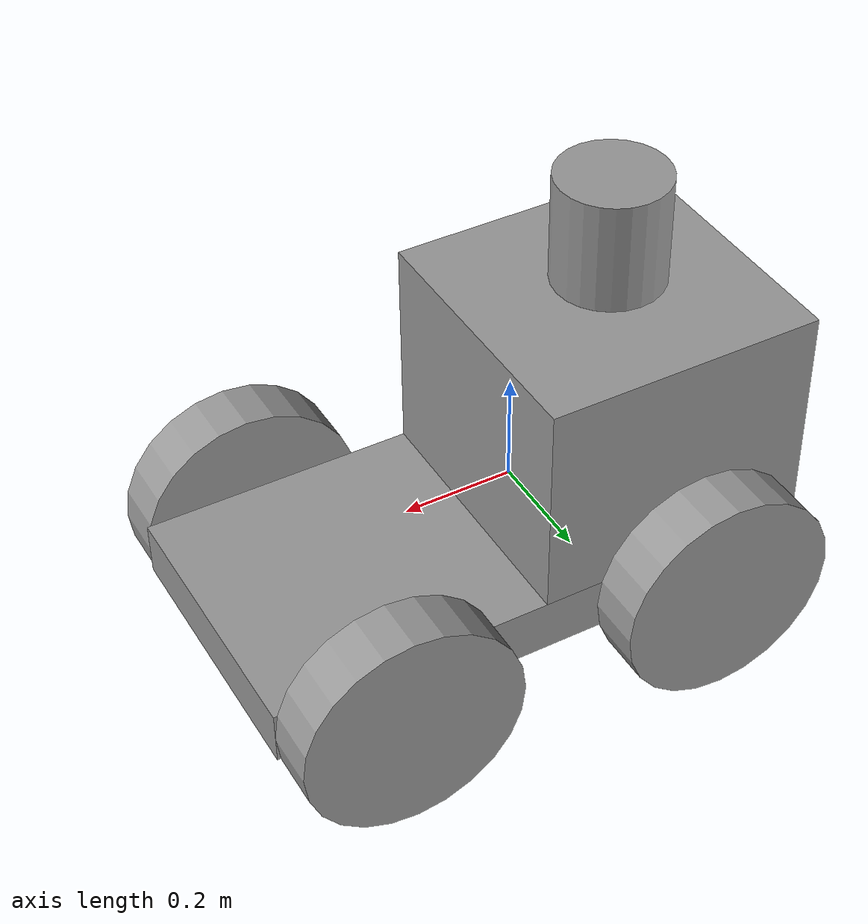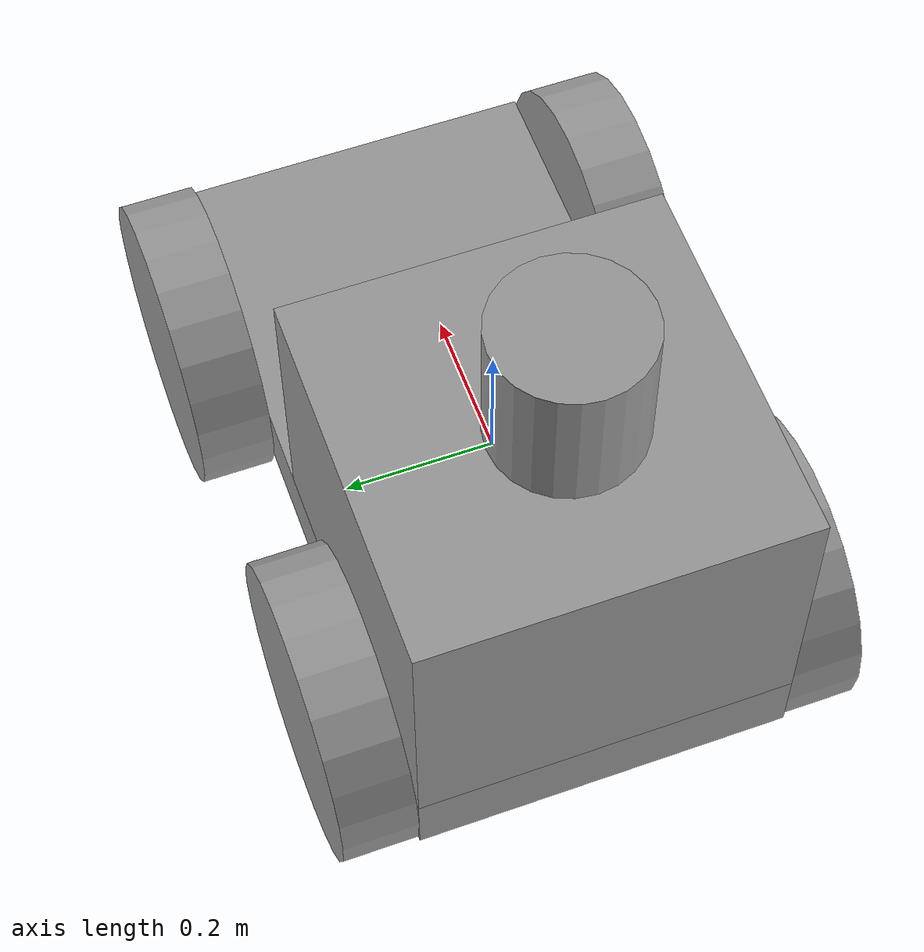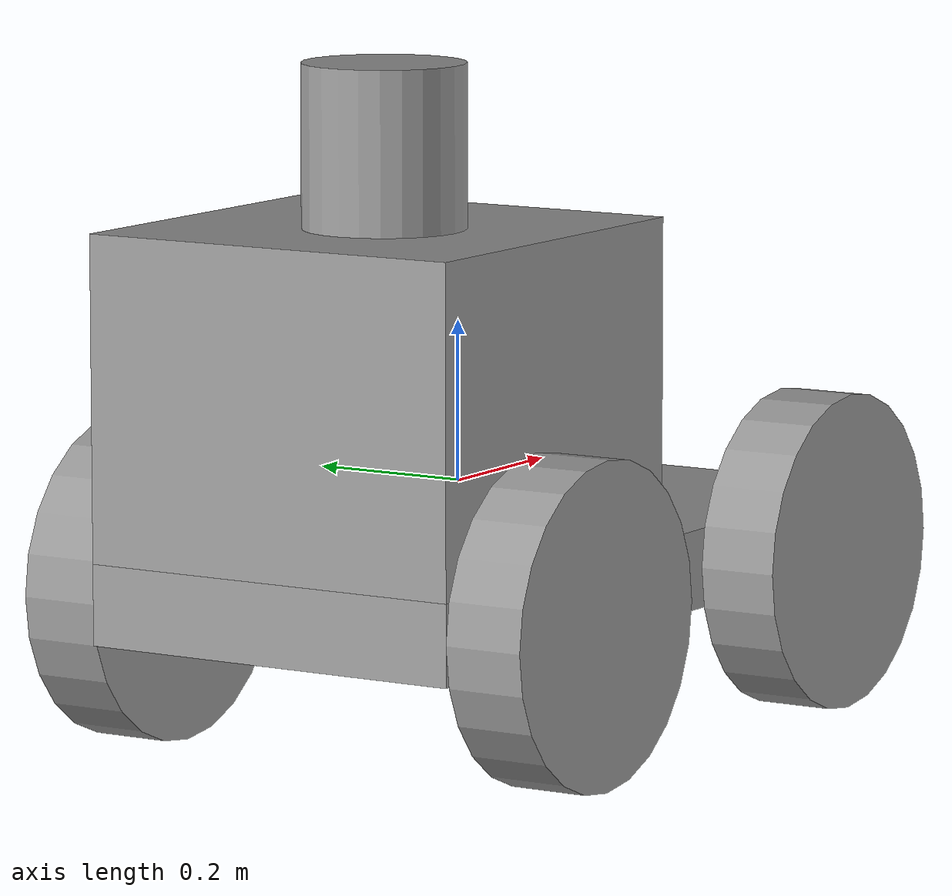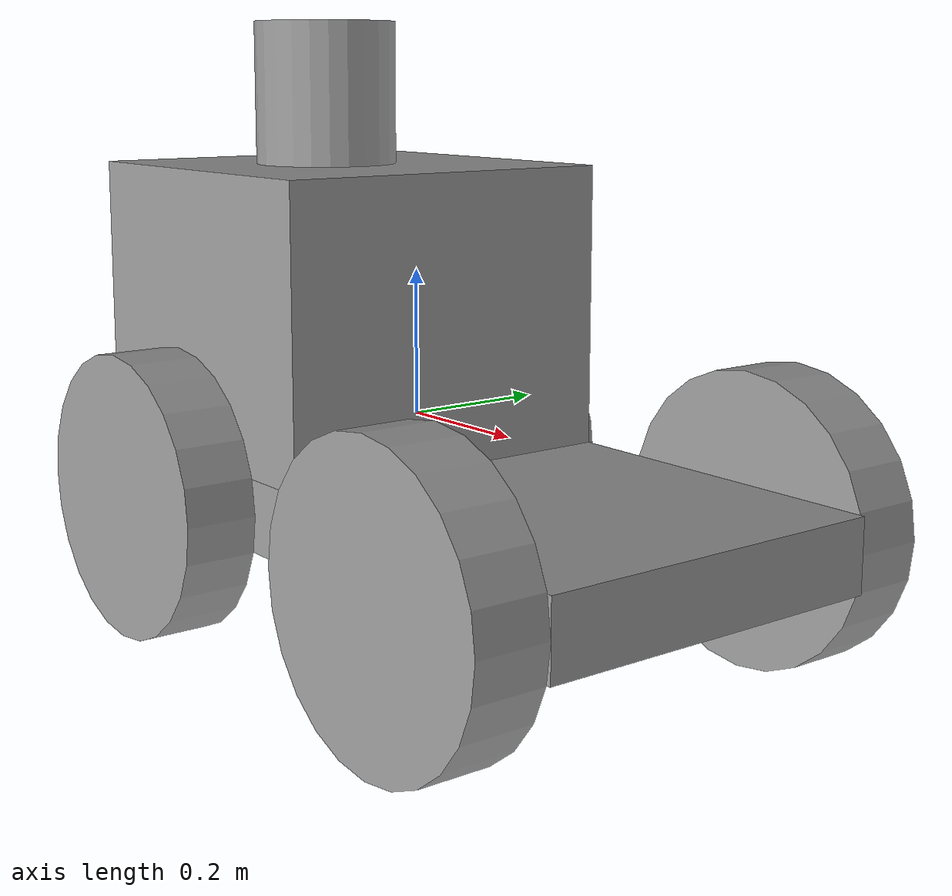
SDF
<?xml version='1.0'?>
<sdf version='1.6'>
  <model name='robot'>
    <link name='link_1'>
      <pose frame=''>0.074286 0.002857 -0.114286 0 -0 0</pose>
      <inertial>
        <mass>1</mass>
        <inertia>
          <ixx>0.166667</ixx>
          <ixy>0</ixy>
          <ixz>0</ixz>
          <iyy>0.166667</iyy>
          <iyz>0</iyz>
          <izz>0.166667</izz>
        </inertia>
        <pose frame=''>0 0 0 0 -0 0</pose>
      </inertial>
      <gravity>1</gravity>
      <self_collide>0</self_collide>
      <kinematic>0</kinematic>
      <visual name='visual'>
        <pose frame=''>0 0 0 0 -0 0</pose>
        <geometry>
          <box>
            <size>1 0.5 0.1</size>
          </box>
        </geometry>
        <material>
          <lighting>1</lighting>
          <script>
            <uri>file://media/materials/scripts/gazebo.material</uri>
            <name>Gazebo/Grey</name>
          </script>
          <shader type='pixel'>
            <normal_map>__default__</normal_map>
          </shader>
          <ambient>0 0 0 0.1</ambient>
          <diffuse>0.7 0.7 0.7 1</diffuse>
          <specular>0.01 0.01 1 1</specular>
          <emissive>0 0 0 1</emissive>
        </material>
        <transparency>0</transparency>
        <cast_shadows>1</cast_shadows>
      </visual>
      <collision name='collision'>
        <laser_retro>0</laser_retro>
        <max_contacts>10</max_contacts>
        <pose frame=''>0 0 0 0 -0 0</pose>
        <geometry>
          <box>
            <size>1 0.5 0.1</size>
          </box>
        </geometry>
        <surface>
          <friction>
            <ode>
              <mu>1</mu>
              <mu2>1</mu2>
              <fdir1>0 0 0</fdir1>
              <slip1>0</slip1>
              <slip2>0</slip2>
            </ode>
            <torsional>
              <coefficient>1</coefficient>
              <patch_radius>0</patch_radius>
              <surface_radius>0</surface_radius>
              <use_patch_radius>1</use_patch_radius>
              <ode>
                <slip>0</slip>
              </ode>
            </torsional>
          </friction>
          <bounce>
            <restitution_coefficient>0</restitution_coefficient>
            <threshold>1e+06</threshold>
          </bounce>
          <contact>
            <collide_without_contact>0</collide_without_contact>
            <collide_without_contact_bitmask>1</collide_without_contact_bitmask>
            <collide_bitmask>1</collide_bitmask>
            <ode>
              <soft_cfm>0</soft_cfm>
              <soft_erp>0.2</soft_erp>
              <kp>1e+13</kp>
              <kd>1</kd>
              <max_vel>0.01</max_vel>
              <min_depth>0</min_depth>
            </ode>
            <bullet>
              <split_impulse>1</split_impulse>
              <split_impulse_penetration_threshold>-0.01</split_impulse_penetration_threshold>
              <soft_cfm>0</soft_cfm>
              <soft_erp>0.2</soft_erp>
              <kp>1e+13</kp>
              <kd>1</kd>
            </bullet>
          </contact>
        </surface>
      </collision>
    </link>
    <link name='link_5'>
      <pose frame=''>-0.225714 -0.297162 -0.114286 1.5707 -0 0</pose>
      <inertial>
        <mass>1</mass>
        <inertia>
          <ixx>0.145833</ixx>
          <ixy>0</ixy>
          <ixz>0</ixz>
          <iyy>0.145833</iyy>
          <iyz>0</iyz>
          <izz>0.125</izz>
        </inertia>
        <pose frame=''>0 0 0 0 -0 0</pose>
      </inertial>
      <gravity>1</gravity>
      <self_collide>0</self_collide>
      <kinematic>0</kinematic>
      <visual name='visual'>
        <pose frame=''>0 0 0 0 -0 0</pose>
        <geometry>
          <cylinder>
            <radius>0.2</radius>
            <length>0.1</length>
          </cylinder>
        </geometry>
        <material>
          <lighting>1</lighting>
          <script>
            <uri>file://media/materials/scripts/gazebo.material</uri>
            <name>Gazebo/Grey</name>
          </script>
          <shader type='pixel'>
            <normal_map>__default__</normal_map>
          </shader>
          <ambient>0.3 0.3 0.3 1</ambient>
          <diffuse>0.7 0.7 0.7 1</diffuse>
          <specular>0.01 0.01 0.01 1</specular>
          <emissive>0 0 0 1</emissive>
        </material>
        <transparency>0</transparency>
        <cast_shadows>1</cast_shadows>
      </visual>
      <collision name='collision'>
        <laser_retro>0</laser_retro>
        <max_contacts>10</max_contacts>
        <pose frame=''>0 0 0 0 -0 0</pose>
        <geometry>
          <cylinder>
            <radius>0.2</radius>
            <length>0.1</length>
          </cylinder>
        </geometry>
        <surface>
          <friction>
            <ode>
              <mu>1</mu>
              <mu2>1</mu2>
              <fdir1>0 0 0</fdir1>
              <slip1>0</slip1>
              <slip2>0</slip2>
            </ode>
            <torsional>
              <coefficient>1</coefficient>
              <patch_radius>0</patch_radius>
              <surface_radius>0</surface_radius>
              <use_patch_radius>1</use_patch_radius>
              <ode>
                <slip>0</slip>
              </ode>
            </torsional>
          </friction>
          <bounce>
            <restitution_coefficient>0</restitution_coefficient>
            <threshold>1e+06</threshold>
          </bounce>
          <contact>
            <collide_without_contact>0</collide_without_contact>
            <collide_without_contact_bitmask>1</collide_without_contact_bitmask>
            <collide_bitmask>1</collide_bitmask>
            <ode>
              <soft_cfm>0</soft_cfm>
              <soft_erp>0.2</soft_erp>
              <kp>1e+13</kp>
              <kd>1</kd>
              <max_vel>0.01</max_vel>
              <min_depth>0</min_depth>
            </ode>
            <bullet>
              <split_impulse>1</split_impulse>
              <split_impulse_penetration_threshold>-0.01</split_impulse_penetration_threshold>
              <soft_cfm>0</soft_cfm>
              <soft_erp>0.2</soft_erp>
              <kp>1e+13</kp>
              <kd>1</kd>
            </bullet>
          </contact>
        </surface>
      </collision>
    </link>
    <link name='link_5_clone'>
      <pose frame=''>0.374286 -0.297162 -0.114286 1.5707 -0 0</pose>
      <inertial>
        <mass>1</mass>
        <inertia>
          <ixx>0.145833</ixx>
          <ixy>0</ixy>
          <ixz>0</ixz>
          <iyy>0.145833</iyy>
          <iyz>0</iyz>
          <izz>0.125</izz>
        </inertia>
        <pose frame=''>0 0 0 0 -0 0</pose>
      </inertial>
      <self_collide>0</self_collide>
      <kinematic>0</kinematic>
      <visual name='visual'>
        <pose frame=''>0 0 0 0 -0 0</pose>
        <geometry>
          <cylinder>
            <radius>0.2</radius>
            <length>0.1</length>
          </cylinder>
        </geometry>
        <material>
          <lighting>1</lighting>
          <script>
            <uri>file://media/materials/scripts/gazebo.material</uri>
            <name>Gazebo/Grey</name>
          </script>
          <shader type='pixel'>
            <normal_map>__default__</normal_map>
          </shader>
          <ambient>0.3 0.3 0.3 1</ambient>
          <diffuse>0.7 0.7 0.7 1</diffuse>
          <specular>0.01 0.01 0.01 1</specular>
          <emissive>0 0 0 1</emissive>
        </material>
        <transparency>0</transparency>
        <cast_shadows>1</cast_shadows>
      </visual>
      <collision name='collision'>
        <laser_retro>0</laser_retro>
        <max_contacts>10</max_contacts>
        <pose frame=''>0 0 0 0 -0 0</pose>
        <geometry>
          <cylinder>
            <radius>0.2</radius>
            <length>0.1</length>
          </cylinder>
        </geometry>
        <surface>
          <friction>
            <ode>
              <mu>1</mu>
              <mu2>1</mu2>
              <fdir1>0 0 0</fdir1>
              <slip1>0</slip1>
              <slip2>0</slip2>
            </ode>
            <torsional>
              <coefficient>1</coefficient>
              <patch_radius>0</patch_radius>
              <surface_radius>0</surface_radius>
              <use_patch_radius>1</use_patch_radius>
              <ode>
                <slip>0</slip>
              </ode>
            </torsional>
          </friction>
          <bounce>
            <restitution_coefficient>0</restitution_coefficient>
            <threshold>1e+06</threshold>
          </bounce>
          <contact>
            <collide_without_contact>0</collide_without_contact>
            <collide_without_contact_bitmask>1</collide_without_contact_bitmask>
            <collide_bitmask>1</collide_bitmask>
            <ode>
              <soft_cfm>0</soft_cfm>
              <soft_erp>0.2</soft_erp>
              <kp>1e+13</kp>
              <kd>1</kd>
              <max_vel>0.01</max_vel>
              <min_depth>0</min_depth>
            </ode>
            <bullet>
              <split_impulse>1</split_impulse>
              <split_impulse_penetration_threshold>-0.01</split_impulse_penetration_threshold>
              <soft_cfm>0</soft_cfm>
              <soft_erp>0.2</soft_erp>
              <kp>1e+13</kp>
              <kd>1</kd>
            </bullet>
          </contact>
        </surface>
      </collision>
    </link>
    <link name='link_5_clone_0'>
      <pose frame=''>-0.225714 0.302876 -0.114286 1.5707 -0 0</pose>
      <inertial>
        <mass>1</mass>
        <inertia>
          <ixx>0.145833</ixx>
          <ixy>0</ixy>
          <ixz>0</ixz>
          <iyy>0.145833</iyy>
          <iyz>0</iyz>
          <izz>0.125</izz>
        </inertia>
        <pose frame=''>0 0 0 0 -0 0</pose>
      </inertial>
      <self_collide>0</self_collide>
      <kinematic>0</kinematic>
      <visual name='visual'>
        <pose frame=''>0 0 0 0 -0 0</pose>
        <geometry>
          <cylinder>
            <radius>0.2</radius>
            <length>0.1</length>
          </cylinder>
        </geometry>
        <material>
          <lighting>1</lighting>
          <script>
            <uri>file://media/materials/scripts/gazebo.material</uri>
            <name>Gazebo/Grey</name>
          </script>
          <shader type='pixel'>
            <normal_map>__default__</normal_map>
          </shader>
          <ambient>0.3 0.3 0.3 1</ambient>
          <diffuse>0.7 0.7 0.7 1</diffuse>
          <specular>0.01 0.01 0.01 1</specular>
          <emissive>0 0 0 1</emissive>
        </material>
        <transparency>0</transparency>
        <cast_shadows>1</cast_shadows>
      </visual>
      <collision name='collision'>
        <laser_retro>0</laser_retro>
        <max_contacts>10</max_contacts>
        <pose frame=''>0 0 0 0 -0 0</pose>
        <geometry>
          <cylinder>
            <radius>0.2</radius>
            <length>0.1</length>
          </cylinder>
        </geometry>
        <surface>
          <friction>
            <ode>
              <mu>1</mu>
              <mu2>1</mu2>
              <fdir1>0 0 0</fdir1>
              <slip1>0</slip1>
              <slip2>0</slip2>
            </ode>
            <torsional>
              <coefficient>1</coefficient>
              <patch_radius>0</patch_radius>
              <surface_radius>0</surface_radius>
              <use_patch_radius>1</use_patch_radius>
              <ode>
                <slip>0</slip>
              </ode>
            </torsional>
          </friction>
          <bounce>
            <restitution_coefficient>0</restitution_coefficient>
            <threshold>1e+06</threshold>
          </bounce>
          <contact>
            <collide_without_contact>0</collide_without_contact>
            <collide_without_contact_bitmask>1</collide_without_contact_bitmask>
            <collide_bitmask>1</collide_bitmask>
            <ode>
              <soft_cfm>0</soft_cfm>
              <soft_erp>0.2</soft_erp>
              <kp>1e+13</kp>
              <kd>1</kd>
              <max_vel>0.01</max_vel>
              <min_depth>0</min_depth>
            </ode>
            <bullet>
              <split_impulse>1</split_impulse>
              <split_impulse_penetration_threshold>-0.01</split_impulse_penetration_threshold>
              <soft_cfm>0</soft_cfm>
              <soft_erp>0.2</soft_erp>
              <kp>1e+13</kp>
              <kd>1</kd>
            </bullet>
          </contact>
        </surface>
      </collision>
    </link>
    <link name='link_5_clone_1'>
      <pose frame=''>0.374286 0.302876 -0.114286 1.5707 -0 0</pose>
      <inertial>
        <mass>1</mass>
        <inertia>
          <ixx>0.145833</ixx>
          <ixy>0</ixy>
          <ixz>0</ixz>
          <iyy>0.145833</iyy>
          <iyz>0</iyz>
          <izz>0.125</izz>
        </inertia>
        <pose frame=''>0 0 0 0 -0 0</pose>
      </inertial>
      <self_collide>0</self_collide>
      <kinematic>0</kinematic>
      <visual name='visual'>
        <pose frame=''>0 0 0 0 -0 0</pose>
        <geometry>
          <cylinder>
            <radius>0.2</radius>
            <length>0.1</length>
          </cylinder>
        </geometry>
        <material>
          <lighting>1</lighting>
          <script>
            <uri>file://media/materials/scripts/gazebo.material</uri>
            <name>Gazebo/Grey</name>
          </script>
          <shader type='pixel'>
            <normal_map>__default__</normal_map>
          </shader>
          <ambient>0.3 0.3 0.3 1</ambient>
          <diffuse>0.7 0.7 0.7 1</diffuse>
          <specular>0.01 0.01 0.01 1</specular>
          <emissive>0 0 0 1</emissive>
        </material>
        <transparency>0</transparency>
        <cast_shadows>1</cast_shadows>
      </visual>
      <collision name='collision'>
        <laser_retro>0</laser_retro>
        <max_contacts>10</max_contacts>
        <pose frame=''>0 0 0 0 -0 0</pose>
        <geometry>
          <cylinder>
            <radius>0.2</radius>
            <length>0.1</length>
          </cylinder>
        </geometry>
        <surface>
          <friction>
            <ode>
              <mu>1</mu>
              <mu2>1</mu2>
              <fdir1>0 0 0</fdir1>
              <slip1>0</slip1>
              <slip2>0</slip2>
            </ode>
            <torsional>
              <coefficient>1</coefficient>
              <patch_radius>0</patch_radius>
              <surface_radius>0</surface_radius>
              <use_patch_radius>1</use_patch_radius>
              <ode>
                <slip>0</slip>
              </ode>
            </torsional>
          </friction>
          <bounce>
            <restitution_coefficient>0</restitution_coefficient>
            <threshold>1e+06</threshold>
          </bounce>
          <contact>
            <collide_without_contact>0</collide_without_contact>
            <collide_without_contact_bitmask>1</collide_without_contact_bitmask>
            <collide_bitmask>1</collide_bitmask>
            <ode>
              <soft_cfm>0</soft_cfm>
              <soft_erp>0.2</soft_erp>
              <kp>1e+13</kp>
              <kd>1</kd>
              <max_vel>0.01</max_vel>
              <min_depth>0</min_depth>
            </ode>
            <bullet>
              <split_impulse>1</split_impulse>
              <split_impulse_penetration_threshold>-0.01</split_impulse_penetration_threshold>
              <soft_cfm>0</soft_cfm>
              <soft_erp>0.2</soft_erp>
              <kp>1e+13</kp>
              <kd>1</kd>
            </bullet>
          </contact>
        </surface>
      </collision>
    </link>
    <link name='link_8'>
      <pose frame=''>-0.175714 0.002857 0.135714 0 -0 0</pose>
      <inertial>
        <mass>1</mass>
        <inertia>
          <ixx>0.166667</ixx>
          <ixy>0</ixy>
          <ixz>0</ixz>
          <iyy>0.166667</iyy>
          <iyz>0</iyz>
          <izz>0.166667</izz>
        </inertia>
        <pose frame=''>0 0 0 0 -0 0</pose>
      </inertial>
      <gravity>1</gravity>
      <self_collide>0</self_collide>
      <kinematic>0</kinematic>
      <visual name='visual'>
        <pose frame=''>0 0 0 0 -0 0</pose>
        <geometry>
          <box>
            <size>0.5 0.5 0.4</size>
          </box>
        </geometry>
        <material>
          <lighting>1</lighting>
          <script>
            <uri>file://media/materials/scripts/gazebo.material</uri>
            <name>Gazebo/Grey</name>
          </script>
          <shader type='pixel'>
            <normal_map>__default__</normal_map>
          </shader>
          <ambient>0 0 0 0.5</ambient>
          <diffuse>0.7 0.7 0.7 1</diffuse>
          <specular>0.01 0.01 0.01 1</specular>
          <emissive>0 0 0 1</emissive>
        </material>
        <transparency>0</transparency>
        <cast_shadows>1</cast_shadows>
      </visual>
      <collision name='collision'>
        <laser_retro>0</laser_retro>
        <max_contacts>10</max_contacts>
        <pose frame=''>0 0 0 0 -0 0</pose>
        <geometry>
          <box>
            <size>0.5 0.5 0.4</size>
          </box>
        </geometry>
        <surface>
          <friction>
            <ode>
              <mu>1</mu>
              <mu2>1</mu2>
              <fdir1>0 0 0</fdir1>
              <slip1>0</slip1>
              <slip2>0</slip2>
            </ode>
            <torsional>
              <coefficient>1</coefficient>
              <patch_radius>0</patch_radius>
              <surface_radius>0</surface_radius>
              <use_patch_radius>1</use_patch_radius>
              <ode>
                <slip>0</slip>
              </ode>
            </torsional>
          </friction>
          <bounce>
            <restitution_coefficient>0</restitution_coefficient>
            <threshold>1e+06</threshold>
          </bounce>
          <contact>
            <collide_without_contact>0</collide_without_contact>
            <collide_without_contact_bitmask>1</collide_without_contact_bitmask>
            <collide_bitmask>1</collide_bitmask>
            <ode>
              <soft_cfm>0</soft_cfm>
              <soft_erp>0.2</soft_erp>
              <kp>1e+13</kp>
              <kd>1</kd>
              <max_vel>0.01</max_vel>
              <min_depth>0</min_depth>
            </ode>
            <bullet>
              <split_impulse>1</split_impulse>
              <split_impulse_penetration_threshold>-0.01</split_impulse_penetration_threshold>
              <soft_cfm>0</soft_cfm>
              <soft_erp>0.2</soft_erp>
              <kp>1e+13</kp>
              <kd>1</kd>
            </bullet>
          </contact>
        </surface>
      </collision>
    </link>
    <link name='link_9'>
      <pose frame=''>-0.195714 -0.017143 0.435714 0 -0 0</pose>
      <inertial>
        <mass>1</mass>
        <inertia>
          <ixx>0.145833</ixx>
          <ixy>0</ixy>
          <ixz>0</ixz>
          <iyy>0.145833</iyy>
          <iyz>0</iyz>
          <izz>0.125</izz>
        </inertia>
        <pose frame=''>0 0 0 0 -0 0</pose>
      </inertial>
      <gravity>1</gravity>
      <self_collide>0</self_collide>
      <kinematic>0</kinematic>
      <visual name='visual'>
        <pose frame=''>0 0 0 0 -0 0</pose>
        <geometry>
          <cylinder>
            <radius>0.1</radius>
            <length>0.2</length>
          </cylinder>
        </geometry>
        <material>
          <lighting>1</lighting>
          <script>
            <uri>file://media/materials/scripts/gazebo.material</uri>
            <name>Gazebo/Grey</name>
          </script>
          <shader type='pixel'>
            <normal_map>__default__</normal_map>
          </shader>
          <ambient>1 1 1 1</ambient>
          <diffuse>1 1 1 1</diffuse>
          <specular>0.01 0.01 0.01 1</specular>
          <emissive>0 0 0 1</emissive>
        </material>
        <transparency>0</transparency>
        <cast_shadows>1</cast_shadows>
      </visual>
      <collision name='collision'>
        <laser_retro>0</laser_retro>
        <max_contacts>10</max_contacts>
        <pose frame=''>0 0 0 0 -0 0</pose>
        <geometry>
          <cylinder>
            <radius>0.1</radius>
            <length>0.2</length>
          </cylinder>
        </geometry>
        <surface>
          <friction>
            <ode>
              <mu>1</mu>
              <mu2>1</mu2>
              <fdir1>0 0 0</fdir1>
              <slip1>0</slip1>
              <slip2>0</slip2>
            </ode>
            <torsional>
              <coefficient>1</coefficient>
              <patch_radius>0</patch_radius>
              <surface_radius>0</surface_radius>
              <use_patch_radius>1</use_patch_radius>
              <ode>
                <slip>0</slip>
              </ode>
            </torsional>
          </friction>
          <bounce>
            <restitution_coefficient>0</restitution_coefficient>
            <threshold>1e+06</threshold>
          </bounce>
          <contact>
            <collide_without_contact>0</collide_without_contact>
            <collide_without_contact_bitmask>1</collide_without_contact_bitmask>
            <collide_bitmask>1</collide_bitmask>
            <ode>
              <soft_cfm>0</soft_cfm>
              <soft_erp>0.2</soft_erp>
              <kp>1e+13</kp>
              <kd>1</kd>
              <max_vel>0.01</max_vel>
              <min_depth>0</min_depth>
            </ode>
            <bullet>
              <split_impulse>1</split_impulse>
              <split_impulse_penetration_threshold>-0.01</split_impulse_penetration_threshold>
              <soft_cfm>0</soft_cfm>
              <soft_erp>0.2</soft_erp>
              <kp>1e+13</kp>
              <kd>1</kd>
            </bullet>
          </contact>
        </surface>
      </collision>
    </link>
    <joint name='link_1_JOINT_3' type='revolute'>
      <parent>link_1</parent>
      <child>link_5</child>
      <pose frame=''>0 0 0 0 -0 0</pose>
      <axis>
        <xyz>0 0 1</xyz>
        <use_parent_model_frame>0</use_parent_model_frame>
        <limit>
          <lower>-1.79769e+308</lower>
          <upper>1.79769e+308</upper>
          <effort>-1</effort>
          <velocity>-1</velocity>
        </limit>
        <dynamics>
          <spring_reference>0</spring_reference>
          <spring_stiffness>0</spring_stiffness>
          <damping>0</damping>
        </dynamics>
      </axis>
      <physics>
        <ode>
          <limit>
            <cfm>0</cfm>
            <erp>0.2</erp>
          </limit>
          <suspension>
            <cfm>0</cfm>
            <erp>0.2</erp>
          </suspension>
        </ode>
      </physics>
    </joint>
    <joint name='link_1_JOINT_4' type='revolute'>
      <parent>link_1</parent>
      <child>link_5_clone</child>
      <pose frame=''>0 0 0 0 -0 0</pose>
      <axis>
        <xyz>0 0 1</xyz>
        <use_parent_model_frame>0</use_parent_model_frame>
        <limit>
          <lower>-1.79769e+308</lower>
          <upper>1.79769e+308</upper>
          <effort>-1</effort>
          <velocity>-1</velocity>
        </limit>
        <dynamics>
          <spring_reference>0</spring_reference>
          <spring_stiffness>0</spring_stiffness>
          <damping>0</damping>
        </dynamics>
      </axis>
      <physics>
        <ode>
          <limit>
            <cfm>0</cfm>
            <erp>0.2</erp>
          </limit>
          <suspension>
            <cfm>0</cfm>
            <erp>0.2</erp>
          </suspension>
        </ode>
      </physics>
    </joint>
    <joint name='link_1_JOINT_5' type='revolute'>
      <parent>link_1</parent>
      <child>link_5_clone_0</child>
      <pose frame=''>0 0 0 0 -0 0</pose>
      <axis>
        <xyz>0 0 1</xyz>
        <use_parent_model_frame>0</use_parent_model_frame>
        <limit>
          <lower>-1.79769e+308</lower>
          <upper>1.79769e+308</upper>
          <effort>-1</effort>
          <velocity>-1</velocity>
        </limit>
        <dynamics>
          <spring_reference>0</spring_reference>
          <spring_stiffness>0</spring_stiffness>
          <damping>0</damping>
        </dynamics>
      </axis>
      <physics>
        <ode>
          <limit>
            <cfm>0</cfm>
            <erp>0.2</erp>
          </limit>
          <suspension>
            <cfm>0</cfm>
            <erp>0.2</erp>
          </suspension>
        </ode>
      </physics>
    </joint>
    <joint name='link_1_JOINT_7' type='revolute'>
      <parent>link_1</parent>
      <child>link_5_clone_1</child>
      <pose frame=''>0 0 0 0 -0 0</pose>
      <axis>
        <xyz>0 0 1</xyz>
        <use_parent_model_frame>0</use_parent_model_frame>
        <limit>
          <lower>-1.79769e+308</lower>
          <upper>1.79769e+308</upper>
          <effort>-1</effort>
          <velocity>-1</velocity>
        </limit>
        <dynamics>
          <spring_reference>0</spring_reference>
          <spring_stiffness>0</spring_stiffness>
          <damping>0</damping>
        </dynamics>
      </axis>
      <physics>
        <ode>
          <limit>
            <cfm>0</cfm>
            <erp>0.2</erp>
          </limit>
          <suspension>
            <cfm>0</cfm>
            <erp>0.2</erp>
          </suspension>
        </ode>
      </physics>
    </joint>
    <joint name='link_1_JOINT_9' type='fixed'>
      <parent>link_1</parent>
      <child>link_8</child>
      <pose frame=''>0 0 0 0 -0 0</pose>
      <physics>
        <ode>
          <limit>
            <cfm>0</cfm>
            <erp>0.2</erp>
          </limit>
          <suspension>
            <cfm>0</cfm>
            <erp>0.2</erp>
          </suspension>
        </ode>
      </physics>
    </joint>
    <joint name='link_8_JOINT_11' type='revolute'>
      <parent>link_8</parent>
      <child>link_9</child>
      <pose frame=''>0 0 0 0 -0 0</pose>
      <axis>
        <xyz>0 0 1</xyz>
        <use_parent_model_frame>0</use_parent_model_frame>
        <limit>
          <lower>-1.79769e+308</lower>
          <upper>1.79769e+308</upper>
          <effort>-1</effort>
          <velocity>-1</velocity>
        </limit>
        <dynamics>
          <spring_reference>0</spring_reference>
          <spring_stiffness>0</spring_stiffness>
          <damping>0</damping>
        </dynamics>
      </axis>
      <physics>
        <ode>
          <limit>
            <cfm>0</cfm>
            <erp>0.2</erp>
          </limit>
          <suspension>
            <cfm>0</cfm>
            <erp>0.2</erp>
          </suspension>
        </ode>
      </physics>
    </joint>
    <static>0</static>
    <allow_auto_disable>1</allow_auto_disable>
  </model>
</sdf>
